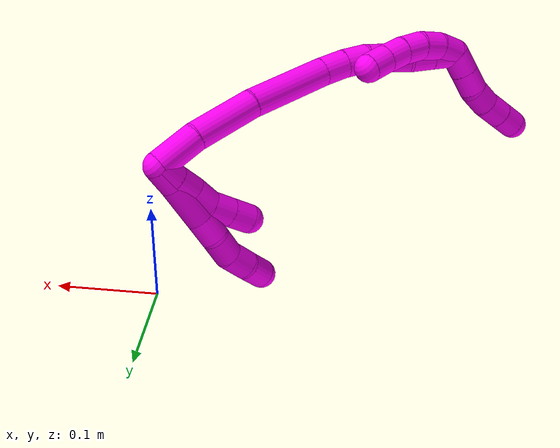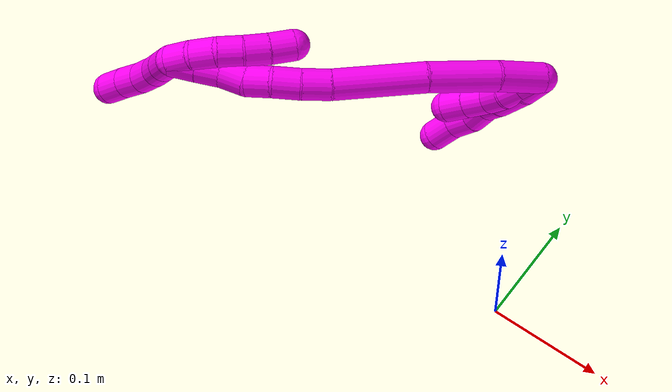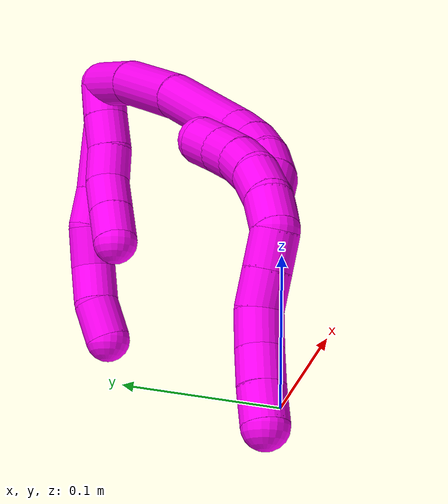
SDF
<sdf version="1.7">
 <world name="default">
  <model name="10">
   <static>0</static>
   <link name="10">
    <collision name="collision-cylinder-e_1_2_8">
     <pose>0.001721 0.00078 0.011273 -0.069084 0.151162 -0.005233</pose>
     <geometry><cylinder><radius>0.0125</radius><length>0.022861</length></cylinder></geometry>
     <surface>
      <friction><ode><mu>1.16</mu><mu2>1.16</mu2><slip1>0</slip1><slip2>0</slip2></ode></friction>
      <contact><ode><kp>1e+06</kp><kd>1</kd><max_vel>0</max_vel><min_depth>0.001</min_depth></ode></contact>
     </surface>
    </collision>
    <visual name="visual-cylinder-e_1_2_8">
     <pose>0.001721 0.00078 0.011273 -0.069084 0.151162 -0.005233</pose>
     <geometry><cylinder><radius>0.0125</radius><length>0.022861</length></cylinder></geometry>
     <material><ambient>1 0 0.964706 1</ambient></material>
    </visual>
    <collision name="collision-cylinder-e_2_8_9">
     <pose>0.005825 -0.000596 0.041715 0.112034 0.122905 0.006901</pose>
     <geometry><cylinder><radius>0.0125</radius><length>0.038872</length></cylinder></geometry>
     <surface>
      <friction><ode><mu>1.16</mu><mu2>1.16</mu2><slip1>0</slip1><slip2>0</slip2></ode></friction>
      <contact><ode><kp>1e+06</kp><kd>1</kd><max_vel>0</max_vel><min_depth>0.001</min_depth></ode></contact>
     </surface>
    </collision>
    <visual name="visual-cylinder-e_2_8_9">
     <pose>0.005825 -0.000596 0.041715 0.112034 0.122905 0.006901</pose>
     <geometry><cylinder><radius>0.0125</radius><length>0.038872</length></cylinder></geometry>
     <material><ambient>1 0 0.964706 1</ambient></material>
    </visual>
    <collision name="collision-cylinder-e_3_9_10">
     <pose>0.009109 -0.004879 0.071222 0.202793 0.085168 0.008671</pose>
     <geometry><cylinder><radius>0.0125</radius><length>0.021188</length></cylinder></geometry>
     <surface>
      <friction><ode><mu>1.16</mu><mu2>1.16</mu2><slip1>0</slip1><slip2>0</slip2></ode></friction>
      <contact><ode><kp>1e+06</kp><kd>1</kd><max_vel>0</max_vel><min_depth>0.001</min_depth></ode></contact>
     </surface>
    </collision>
    <visual name="visual-cylinder-e_3_9_10">
     <pose>0.009109 -0.004879 0.071222 0.202793 0.085168 0.008671</pose>
     <geometry><cylinder><radius>0.0125</radius><length>0.021188</length></cylinder></geometry>
     <material><ambient>1 0 0.964706 1</ambient></material>
    </visual>
    <collision name="collision-cylinder-e_4_10_11">
     <pose>0.012441 -0.0064 0.092918 -0.053225 0.210584 -0.005626</pose>
     <geometry><cylinder><radius>0.0125</radius><length>0.02326</length></cylinder></geometry>
     <surface>
      <friction><ode><mu>1.16</mu><mu2>1.16</mu2><slip1>0</slip1><slip2>0</slip2></ode></friction>
      <contact><ode><kp>1e+06</kp><kd>1</kd><max_vel>0</max_vel><min_depth>0.001</min_depth></ode></contact>
     </surface>
    </collision>
    <visual name="visual-cylinder-e_4_10_11">
     <pose>0.012441 -0.0064 0.092918 -0.053225 0.210584 -0.005626</pose>
     <geometry><cylinder><radius>0.0125</radius><length>0.02326</length></cylinder></geometry>
     <material><ambient>1 0 0.964706 1</ambient></material>
    </visual>
    <collision name="collision-cylinder-e_5_11_12">
     <pose>0.013642 -0.004453 0.114888 -0.12575 -0.114505 0.007217</pose>
     <geometry><cylinder><radius>0.0125</radius><length>0.021536</length></cylinder></geometry>
     <surface>
      <friction><ode><mu>1.16</mu><mu2>1.16</mu2><slip1>0</slip1><slip2>0</slip2></ode></friction>
      <contact><ode><kp>1e+06</kp><kd>1</kd><max_vel>0</max_vel><min_depth>0.001</min_depth></ode></contact>
     </surface>
    </collision>
    <visual name="visual-cylinder-e_5_11_12">
     <pose>0.013642 -0.004453 0.114888 -0.12575 -0.114505 0.007217</pose>
     <geometry><cylinder><radius>0.0125</radius><length>0.021536</length></cylinder></geometry>
     <material><ambient>1 0 0.964706 1</ambient></material>
    </visual>
    <collision name="collision-cylinder-e_6_12_6">
     <pose>0.012497 0.000465 0.136053 -0.326752 0.007649 -0.001261</pose>
     <geometry><cylinder><radius>0.0125</radius><length>0.022284</length></cylinder></geometry>
     <surface>
      <friction><ode><mu>1.16</mu><mu2>1.16</mu2><slip1>0</slip1><slip2>0</slip2></ode></friction>
      <contact><ode><kp>1e+06</kp><kd>1</kd><max_vel>0</max_vel><min_depth>0.001</min_depth></ode></contact>
     </surface>
    </collision>
    <visual name="visual-cylinder-e_6_12_6">
     <pose>0.012497 0.000465 0.136053 -0.326752 0.007649 -0.001261</pose>
     <geometry><cylinder><radius>0.0125</radius><length>0.022284</length></cylinder></geometry>
     <material><ambient>1 0 0.964706 1</ambient></material>
    </visual>
    <collision name="collision-cylinder-e_1_2_13">
     <pose>-0.000278 0.001058 0.00994 -0.106013 -0.027789 0.001474</pose>
     <geometry><cylinder><radius>0.0125</radius><length>0.02</length></cylinder></geometry>
     <surface>
      <friction><ode><mu>1.16</mu><mu2>1.16</mu2><slip1>0</slip1><slip2>0</slip2></ode></friction>
      <contact><ode><kp>1e+06</kp><kd>1</kd><max_vel>0</max_vel><min_depth>0.001</min_depth></ode></contact>
     </surface>
    </collision>
    <visual name="visual-cylinder-e_1_2_13">
     <pose>-0.000278 0.001058 0.00994 -0.106013 -0.027789 0.001474</pose>
     <geometry><cylinder><radius>0.0125</radius><length>0.02</length></cylinder></geometry>
     <material><ambient>1 0 0.964706 1</ambient></material>
    </visual>
    <collision name="collision-cylinder-e_2_13_14">
     <pose>-0.001099 0.003622 0.029751 -0.151465 -0.054321 0.004123</pose>
     <geometry><cylinder><radius>0.0125</radius><length>0.02</length></cylinder></geometry>
     <surface>
      <friction><ode><mu>1.16</mu><mu2>1.16</mu2><slip1>0</slip1><slip2>0</slip2></ode></friction>
      <contact><ode><kp>1e+06</kp><kd>1</kd><max_vel>0</max_vel><min_depth>0.001</min_depth></ode></contact>
     </surface>
    </collision>
    <visual name="visual-cylinder-e_2_13_14">
     <pose>-0.001099 0.003622 0.029751 -0.151465 -0.054321 0.004123</pose>
     <geometry><cylinder><radius>0.0125</radius><length>0.02</length></cylinder></geometry>
     <material><ambient>1 0 0.964706 1</ambient></material>
    </visual>
    <collision name="collision-cylinder-e_3_14_15">
     <pose>-0.002195 0.004845 0.049603 0.028428 -0.055363 -0.000787</pose>
     <geometry><cylinder><radius>0.0125</radius><length>0.02</length></cylinder></geometry>
     <surface>
      <friction><ode><mu>1.16</mu><mu2>1.16</mu2><slip1>0</slip1><slip2>0</slip2></ode></friction>
      <contact><ode><kp>1e+06</kp><kd>1</kd><max_vel>0</max_vel><min_depth>0.001</min_depth></ode></contact>
     </surface>
    </collision>
    <visual name="visual-cylinder-e_3_14_15">
     <pose>-0.002195 0.004845 0.049603 0.028428 -0.055363 -0.000787</pose>
     <geometry><cylinder><radius>0.0125</radius><length>0.02</length></cylinder></geometry>
     <material><ambient>1 0 0.964706 1</ambient></material>
    </visual>
    <collision name="collision-cylinder-e_4_15_16">
     <pose>-0.005666 0.006453 0.068959 -0.199089 -0.296044 0.029783</pose>
     <geometry><cylinder><radius>0.0125</radius><length>0.02</length></cylinder></geometry>
     <surface>
      <friction><ode><mu>1.16</mu><mu2>1.16</mu2><slip1>0</slip1><slip2>0</slip2></ode></friction>
      <contact><ode><kp>1e+06</kp><kd>1</kd><max_vel>0</max_vel><min_depth>0.001</min_depth></ode></contact>
     </surface>
    </collision>
    <visual name="visual-cylinder-e_4_15_16">
     <pose>-0.005666 0.006453 0.068959 -0.199089 -0.296044 0.029783</pose>
     <geometry><cylinder><radius>0.0125</radius><length>0.02</length></cylinder></geometry>
     <material><ambient>1 0 0.964706 1</ambient></material>
    </visual>
    <collision name="collision-cylinder-e_5_16_5">
     <pose>-0.011491 0.010264 0.087709 -0.20196 -0.295031 0.03011</pose>
     <geometry><cylinder><radius>0.0125</radius><length>0.02</length></cylinder></geometry>
     <surface>
      <friction><ode><mu>1.16</mu><mu2>1.16</mu2><slip1>0</slip1><slip2>0</slip2></ode></friction>
      <contact><ode><kp>1e+06</kp><kd>1</kd><max_vel>0</max_vel><min_depth>0.001</min_depth></ode></contact>
     </surface>
    </collision>
    <visual name="visual-cylinder-e_5_16_5">
     <pose>-0.011491 0.010264 0.087709 -0.20196 -0.295031 0.03011</pose>
     <geometry><cylinder><radius>0.0125</radius><length>0.02</length></cylinder></geometry>
     <material><ambient>1 0 0.964706 1</ambient></material>
    </visual>
    <collision name="collision-cylinder-e_1_2_17">
     <pose>-0.01522 0.011503 0.00479 -1.17623 -0.884792 0.611932</pose>
     <geometry><cylinder><radius>0.0125</radius><length>0.03934</length></cylinder></geometry>
     <surface>
      <friction><ode><mu>1.16</mu><mu2>1.16</mu2><slip1>0</slip1><slip2>0</slip2></ode></friction>
      <contact><ode><kp>1e+06</kp><kd>1</kd><max_vel>0</max_vel><min_depth>0.001</min_depth></ode></contact>
     </surface>
    </collision>
    <visual name="visual-cylinder-e_1_2_17">
     <pose>-0.01522 0.011503 0.00479 -1.17623 -0.884792 0.611932</pose>
     <geometry><cylinder><radius>0.0125</radius><length>0.03934</length></cylinder></geometry>
     <material><ambient>1 0 0.964706 1</ambient></material>
    </visual>
    <collision name="collision-cylinder-e_2_17_18">
     <pose>-0.051346 0.039537 0.020714 -0.97807 -0.809227 0.448125</pose>
     <geometry><cylinder><radius>0.0125</radius><length>0.057769</length></cylinder></geometry>
     <surface>
      <friction><ode><mu>1.16</mu><mu2>1.16</mu2><slip1>0</slip1><slip2>0</slip2></ode></friction>
      <contact><ode><kp>1e+06</kp><kd>1</kd><max_vel>0</max_vel><min_depth>0.001</min_depth></ode></contact>
     </surface>
    </collision>
    <visual name="visual-cylinder-e_2_17_18">
     <pose>-0.051346 0.039537 0.020714 -0.97807 -0.809227 0.448125</pose>
     <geometry><cylinder><radius>0.0125</radius><length>0.057769</length></cylinder></geometry>
     <material><ambient>1 0 0.964706 1</ambient></material>
    </visual>
    <collision name="collision-cylinder-e_3_18_19">
     <pose>-0.097158 0.077253 0.049991 -0.862582 -0.728937 0.34759</pose>
     <geometry><cylinder><radius>0.0125</radius><length>0.074786</length></cylinder></geometry>
     <surface>
      <friction><ode><mu>1.16</mu><mu2>1.16</mu2><slip1>0</slip1><slip2>0</slip2></ode></friction>
      <contact><ode><kp>1e+06</kp><kd>1</kd><max_vel>0</max_vel><min_depth>0.001</min_depth></ode></contact>
     </surface>
    </collision>
    <visual name="visual-cylinder-e_3_18_19">
     <pose>-0.097158 0.077253 0.049991 -0.862582 -0.728937 0.34759</pose>
     <geometry><cylinder><radius>0.0125</radius><length>0.074786</length></cylinder></geometry>
     <material><ambient>1 0 0.964706 1</ambient></material>
    </visual>
    <collision name="collision-cylinder-e_4_19_20">
     <pose>-0.130455 0.103956 0.074037 -0.751797 -0.804148 0.332555</pose>
     <geometry><cylinder><radius>0.0125</radius><length>0.0233</length></cylinder></geometry>
     <surface>
      <friction><ode><mu>1.16</mu><mu2>1.16</mu2><slip1>0</slip1><slip2>0</slip2></ode></friction>
      <contact><ode><kp>1e+06</kp><kd>1</kd><max_vel>0</max_vel><min_depth>0.001</min_depth></ode></contact>
     </surface>
    </collision>
    <visual name="visual-cylinder-e_4_19_20">
     <pose>-0.130455 0.103956 0.074037 -0.751797 -0.804148 0.332555</pose>
     <geometry><cylinder><radius>0.0125</radius><length>0.0233</length></cylinder></geometry>
     <material><ambient>1 0 0.964706 1</ambient></material>
    </visual>
    <collision name="collision-cylinder-e_5_20_21">
     <pose>-0.146858 0.113545 0.086285 -0.570261 -0.815899 0.252025</pose>
     <geometry><cylinder><radius>0.0125</radius><length>0.022</length></cylinder></geometry>
     <surface>
      <friction><ode><mu>1.16</mu><mu2>1.16</mu2><slip1>0</slip1><slip2>0</slip2></ode></friction>
      <contact><ode><kp>1e+06</kp><kd>1</kd><max_vel>0</max_vel><min_depth>0.001</min_depth></ode></contact>
     </surface>
    </collision>
    <visual name="visual-cylinder-e_5_20_21">
     <pose>-0.146858 0.113545 0.086285 -0.570261 -0.815899 0.252025</pose>
     <geometry><cylinder><radius>0.0125</radius><length>0.022</length></cylinder></geometry>
     <material><ambient>1 0 0.964706 1</ambient></material>
    </visual>
    <collision name="collision-cylinder-e_6_21_22">
     <pose>-0.161245 0.120392 0.099979 -0.361436 -0.681663 0.129425</pose>
     <geometry><cylinder><radius>0.0125</radius><length>0.020237</length></cylinder></geometry>
     <surface>
      <friction><ode><mu>1.16</mu><mu2>1.16</mu2><slip1>0</slip1><slip2>0</slip2></ode></friction>
      <contact><ode><kp>1e+06</kp><kd>1</kd><max_vel>0</max_vel><min_depth>0.001</min_depth></ode></contact>
     </surface>
    </collision>
    <visual name="visual-cylinder-e_6_21_22">
     <pose>-0.161245 0.120392 0.099979 -0.361436 -0.681663 0.129425</pose>
     <geometry><cylinder><radius>0.0125</radius><length>0.020237</length></cylinder></geometry>
     <material><ambient>1 0 0.964706 1</ambient></material>
    </visual>
    <collision name="collision-cylinder-e_7_22_23">
     <pose>-0.175506 0.123323 0.11416 -0.022202 -0.856795 0.010139</pose>
     <geometry><cylinder><radius>0.0125</radius><length>0.020868</length></cylinder></geometry>
     <surface>
      <friction><ode><mu>1.16</mu><mu2>1.16</mu2><slip1>0</slip1><slip2>0</slip2></ode></friction>
      <contact><ode><kp>1e+06</kp><kd>1</kd><max_vel>0</max_vel><min_depth>0.001</min_depth></ode></contact>
     </surface>
    </collision>
    <visual name="visual-cylinder-e_7_22_23">
     <pose>-0.175506 0.123323 0.11416 -0.022202 -0.856795 0.010139</pose>
     <geometry><cylinder><radius>0.0125</radius><length>0.020868</length></cylinder></geometry>
     <material><ambient>1 0 0.964706 1</ambient></material>
    </visual>
    <collision name="collision-cylinder-e_8_23_24">
     <pose>-0.190982 0.125518 0.127293 -0.313571 -0.853236 0.143461</pose>
     <geometry><cylinder><radius>0.0125</radius><length>0.020149</length></cylinder></geometry>
     <surface>
      <friction><ode><mu>1.16</mu><mu2>1.16</mu2><slip1>0</slip1><slip2>0</slip2></ode></friction>
      <contact><ode><kp>1e+06</kp><kd>1</kd><max_vel>0</max_vel><min_depth>0.001</min_depth></ode></contact>
     </surface>
    </collision>
    <visual name="visual-cylinder-e_8_23_24">
     <pose>-0.190982 0.125518 0.127293 -0.313571 -0.853236 0.143461</pose>
     <geometry><cylinder><radius>0.0125</radius><length>0.020149</length></cylinder></geometry>
     <material><ambient>1 0 0.964706 1</ambient></material>
    </visual>
    <collision name="collision-cylinder-e_9_24_1">
     <pose>-0.206734 0.129537 0.140347 -0.284617 -0.859335 0.131116</pose>
     <geometry><cylinder><radius>0.0125</radius><length>0.02155</length></cylinder></geometry>
     <surface>
      <friction><ode><mu>1.16</mu><mu2>1.16</mu2><slip1>0</slip1><slip2>0</slip2></ode></friction>
      <contact><ode><kp>1e+06</kp><kd>1</kd><max_vel>0</max_vel><min_depth>0.001</min_depth></ode></contact>
     </surface>
    </collision>
    <visual name="visual-cylinder-e_9_24_1">
     <pose>-0.206734 0.129537 0.140347 -0.284617 -0.859335 0.131116</pose>
     <geometry><cylinder><radius>0.0125</radius><length>0.02155</length></cylinder></geometry>
     <material><ambient>1 0 0.964706 1</ambient></material>
    </visual>
    <collision name="collision-cylinder-e_1_1_25">
     <pose>-0.211609 0.129063 0.137978 2.87929 0.334857 1.81615</pose>
     <geometry><cylinder><radius>0.0125</radius><length>0.02</length></cylinder></geometry>
     <surface>
      <friction><ode><mu>1.16</mu><mu2>1.16</mu2><slip1>0</slip1><slip2>0</slip2></ode></friction>
      <contact><ode><kp>1e+06</kp><kd>1</kd><max_vel>0</max_vel><min_depth>0.001</min_depth></ode></contact>
     </surface>
    </collision>
    <visual name="visual-cylinder-e_1_1_25">
     <pose>-0.211609 0.129063 0.137978 2.87929 0.334857 1.81615</pose>
     <geometry><cylinder><radius>0.0125</radius><length>0.02</length></cylinder></geometry>
     <material><ambient>1 0 0.964706 1</ambient></material>
    </visual>
    <collision name="collision-cylinder-e_2_25_26">
     <pose>-0.20325 0.122758 0.121149 2.67767 0.532003 1.71306</pose>
     <geometry><cylinder><radius>0.0125</radius><length>0.02</length></cylinder></geometry>
     <surface>
      <friction><ode><mu>1.16</mu><mu2>1.16</mu2><slip1>0</slip1><slip2>0</slip2></ode></friction>
      <contact><ode><kp>1e+06</kp><kd>1</kd><max_vel>0</max_vel><min_depth>0.001</min_depth></ode></contact>
     </surface>
    </collision>
    <visual name="visual-cylinder-e_2_25_26">
     <pose>-0.20325 0.122758 0.121149 2.67767 0.532003 1.71306</pose>
     <geometry><cylinder><radius>0.0125</radius><length>0.02</length></cylinder></geometry>
     <material><ambient>1 0 0.964706 1</ambient></material>
    </visual>
    <collision name="collision-cylinder-e_3_26_27">
     <pose>-0.191599 0.114073 0.107662 2.44565 0.717897 1.60459</pose>
     <geometry><cylinder><radius>0.0125</radius><length>0.02</length></cylinder></geometry>
     <surface>
      <friction><ode><mu>1.16</mu><mu2>1.16</mu2><slip1>0</slip1><slip2>0</slip2></ode></friction>
      <contact><ode><kp>1e+06</kp><kd>1</kd><max_vel>0</max_vel><min_depth>0.001</min_depth></ode></contact>
     </surface>
    </collision>
    <visual name="visual-cylinder-e_3_26_27">
     <pose>-0.191599 0.114073 0.107662 2.44565 0.717897 1.60459</pose>
     <geometry><cylinder><radius>0.0125</radius><length>0.02</length></cylinder></geometry>
     <material><ambient>1 0 0.964706 1</ambient></material>
    </visual>
    <collision name="collision-cylinder-e_4_27_28">
     <pose>-0.178419 0.103388 0.097178 2.24747 0.721115 1.33282</pose>
     <geometry><cylinder><radius>0.0125</radius><length>0.02</length></cylinder></geometry>
     <surface>
      <friction><ode><mu>1.16</mu><mu2>1.16</mu2><slip1>0</slip1><slip2>0</slip2></ode></friction>
      <contact><ode><kp>1e+06</kp><kd>1</kd><max_vel>0</max_vel><min_depth>0.001</min_depth></ode></contact>
     </surface>
    </collision>
    <visual name="visual-cylinder-e_4_27_28">
     <pose>-0.178419 0.103388 0.097178 2.24747 0.721115 1.33282</pose>
     <geometry><cylinder><radius>0.0125</radius><length>0.02</length></cylinder></geometry>
     <material><ambient>1 0 0.964706 1</ambient></material>
    </visual>
    <collision name="collision-cylinder-e_5_28_4">
     <pose>-0.165643 0.091112 0.087928 2.18705 0.665317 1.17797</pose>
     <geometry><cylinder><radius>0.0125</radius><length>0.02</length></cylinder></geometry>
     <surface>
      <friction><ode><mu>1.16</mu><mu2>1.16</mu2><slip1>0</slip1><slip2>0</slip2></ode></friction>
      <contact><ode><kp>1e+06</kp><kd>1</kd><max_vel>0</max_vel><min_depth>0.001</min_depth></ode></contact>
     </surface>
    </collision>
    <visual name="visual-cylinder-e_5_28_4">
     <pose>-0.165643 0.091112 0.087928 2.18705 0.665317 1.17797</pose>
     <geometry><cylinder><radius>0.0125</radius><length>0.02</length></cylinder></geometry>
     <material><ambient>1 0 0.964706 1</ambient></material>
    </visual>
    <collision name="collision-cylinder-e_1_1_29">
     <pose>-0.213324 0.129355 0.156737 0.220222 0.157713 0.017472</pose>
     <geometry><cylinder><radius>0.0125</radius><length>0.02</length></cylinder></geometry>
     <surface>
      <friction><ode><mu>1.16</mu><mu2>1.16</mu2><slip1>0</slip1><slip2>0</slip2></ode></friction>
      <contact><ode><kp>1e+06</kp><kd>1</kd><max_vel>0</max_vel><min_depth>0.001</min_depth></ode></contact>
     </surface>
    </collision>
    <visual name="visual-cylinder-e_1_1_29">
     <pose>-0.213324 0.129355 0.156737 0.220222 0.157713 0.017472</pose>
     <geometry><cylinder><radius>0.0125</radius><length>0.02</length></cylinder></geometry>
     <material><ambient>1 0 0.964706 1</ambient></material>
    </visual>
    <collision name="collision-cylinder-e_2_29_30">
     <pose>-0.210181 0.125039 0.176011 0.220292 0.157876 0.017496</pose>
     <geometry><cylinder><radius>0.0125</radius><length>0.02</length></cylinder></geometry>
     <surface>
      <friction><ode><mu>1.16</mu><mu2>1.16</mu2><slip1>0</slip1><slip2>0</slip2></ode></friction>
      <contact><ode><kp>1e+06</kp><kd>1</kd><max_vel>0</max_vel><min_depth>0.001</min_depth></ode></contact>
     </surface>
    </collision>
    <visual name="visual-cylinder-e_2_29_30">
     <pose>-0.210181 0.125039 0.176011 0.220292 0.157876 0.017496</pose>
     <geometry><cylinder><radius>0.0125</radius><length>0.02</length></cylinder></geometry>
     <material><ambient>1 0 0.964706 1</ambient></material>
    </visual>
    <collision name="collision-cylinder-e_3_30_31">
     <pose>-0.208815 0.123225 0.19564 -0.03436 -0.020588 0.000354</pose>
     <geometry><cylinder><radius>0.0125</radius><length>0.02</length></cylinder></geometry>
     <surface>
      <friction><ode><mu>1.16</mu><mu2>1.16</mu2><slip1>0</slip1><slip2>0</slip2></ode></friction>
      <contact><ode><kp>1e+06</kp><kd>1</kd><max_vel>0</max_vel><min_depth>0.001</min_depth></ode></contact>
     </surface>
    </collision>
    <visual name="visual-cylinder-e_3_30_31">
     <pose>-0.208815 0.123225 0.19564 -0.03436 -0.020588 0.000354</pose>
     <geometry><cylinder><radius>0.0125</radius><length>0.02</length></cylinder></geometry>
     <material><ambient>1 0 0.964706 1</ambient></material>
    </visual>
    <collision name="collision-cylinder-e_4_31_32">
     <pose>-0.210694 0.124391 0.215457 -0.083566 -0.168065 0.007043</pose>
     <geometry><cylinder><radius>0.0125</radius><length>0.02</length></cylinder></geometry>
     <surface>
      <friction><ode><mu>1.16</mu><mu2>1.16</mu2><slip1>0</slip1><slip2>0</slip2></ode></friction>
      <contact><ode><kp>1e+06</kp><kd>1</kd><max_vel>0</max_vel><min_depth>0.001</min_depth></ode></contact>
     </surface>
    </collision>
    <visual name="visual-cylinder-e_4_31_32">
     <pose>-0.210694 0.124391 0.215457 -0.083566 -0.168065 0.007043</pose>
     <geometry><cylinder><radius>0.0125</radius><length>0.02</length></cylinder></geometry>
     <material><ambient>1 0 0.964706 1</ambient></material>
    </visual>
    <collision name="collision-cylinder-e_5_32_3">
     <pose>-0.213892 0.126547 0.235074 -0.135286 -0.153099 0.010392</pose>
     <geometry><cylinder><radius>0.0125</radius><length>0.02</length></cylinder></geometry>
     <surface>
      <friction><ode><mu>1.16</mu><mu2>1.16</mu2><slip1>0</slip1><slip2>0</slip2></ode></friction>
      <contact><ode><kp>1e+06</kp><kd>1</kd><max_vel>0</max_vel><min_depth>0.001</min_depth></ode></contact>
     </surface>
    </collision>
    <visual name="visual-cylinder-e_5_32_3">
     <pose>-0.213892 0.126547 0.235074 -0.135286 -0.153099 0.010392</pose>
     <geometry><cylinder><radius>0.0125</radius><length>0.02</length></cylinder></geometry>
     <material><ambient>1 0 0.964706 1</ambient></material>
    </visual>
    <collision name="collision-sphere-3">
     <pose>-0.215417 0.12788 0.244867 0 -0 0</pose>
     <geometry><sphere><radius>0.0125</radius></sphere></geometry>
     <surface>
      <friction><ode><mu>1.16</mu><mu2>1.16</mu2><slip1>0</slip1><slip2>0</slip2></ode></friction>
      <contact><ode><kp>1e+06</kp><kd>1</kd><max_vel>0</max_vel><min_depth>0.001</min_depth></ode></contact>
     </surface>
    </collision>
    <visual name="visual-sphere-3">
     <pose>-0.215417 0.12788 0.244867 0 -0 0</pose>
     <geometry><sphere><radius>0.0125</radius></sphere></geometry>
     <material><ambient>1 0 0.964706 1</ambient></material>
    </visual>
    <collision name="collision-sphere-32">
     <pose>-0.212367 0.125214 0.225281 0 -0 0</pose>
     <geometry><sphere><radius>0.0125</radius></sphere></geometry>
     <surface>
      <friction><ode><mu>1.16</mu><mu2>1.16</mu2><slip1>0</slip1><slip2>0</slip2></ode></friction>
      <contact><ode><kp>1e+06</kp><kd>1</kd><max_vel>0</max_vel><min_depth>0.001</min_depth></ode></contact>
     </surface>
    </collision>
    <visual name="visual-sphere-32">
     <pose>-0.212367 0.125214 0.225281 0 -0 0</pose>
     <geometry><sphere><radius>0.0125</radius></sphere></geometry>
     <material><ambient>1 0 0.964706 1</ambient></material>
    </visual>
    <collision name="collision-sphere-31">
     <pose>-0.209021 0.123568 0.205632 0 -0 0</pose>
     <geometry><sphere><radius>0.0125</radius></sphere></geometry>
     <surface>
      <friction><ode><mu>1.16</mu><mu2>1.16</mu2><slip1>0</slip1><slip2>0</slip2></ode></friction>
      <contact><ode><kp>1e+06</kp><kd>1</kd><max_vel>0</max_vel><min_depth>0.001</min_depth></ode></contact>
     </surface>
    </collision>
    <visual name="visual-sphere-31">
     <pose>-0.209021 0.123568 0.205632 0 -0 0</pose>
     <geometry><sphere><radius>0.0125</radius></sphere></geometry>
     <material><ambient>1 0 0.964706 1</ambient></material>
    </visual>
    <collision name="collision-sphere-30">
     <pose>-0.208609 0.122881 0.185648 0 -0 0</pose>
     <geometry><sphere><radius>0.0125</radius></sphere></geometry>
     <surface>
      <friction><ode><mu>1.16</mu><mu2>1.16</mu2><slip1>0</slip1><slip2>0</slip2></ode></friction>
      <contact><ode><kp>1e+06</kp><kd>1</kd><max_vel>0</max_vel><min_depth>0.001</min_depth></ode></contact>
     </surface>
    </collision>
    <visual name="visual-sphere-30">
     <pose>-0.208609 0.122881 0.185648 0 -0 0</pose>
     <geometry><sphere><radius>0.0125</radius></sphere></geometry>
     <material><ambient>1 0 0.964706 1</ambient></material>
    </visual>
    <collision name="collision-sphere-29">
     <pose>-0.211754 0.127197 0.166374 0 -0 0</pose>
     <geometry><sphere><radius>0.0125</radius></sphere></geometry>
     <surface>
      <friction><ode><mu>1.16</mu><mu2>1.16</mu2><slip1>0</slip1><slip2>0</slip2></ode></friction>
      <contact><ode><kp>1e+06</kp><kd>1</kd><max_vel>0</max_vel><min_depth>0.001</min_depth></ode></contact>
     </surface>
    </collision>
    <visual name="visual-sphere-29">
     <pose>-0.211754 0.127197 0.166374 0 -0 0</pose>
     <geometry><sphere><radius>0.0125</radius></sphere></geometry>
     <material><ambient>1 0 0.964706 1</ambient></material>
    </visual>
    <collision name="collision-sphere-4">
     <pose>-0.15947 0.084692 0.083381 0 -0 0</pose>
     <geometry><sphere><radius>0.0125</radius></sphere></geometry>
     <surface>
      <friction><ode><mu>1.16</mu><mu2>1.16</mu2><slip1>0</slip1><slip2>0</slip2></ode></friction>
      <contact><ode><kp>1e+06</kp><kd>1</kd><max_vel>0</max_vel><min_depth>0.001</min_depth></ode></contact>
     </surface>
    </collision>
    <visual name="visual-sphere-4">
     <pose>-0.15947 0.084692 0.083381 0 -0 0</pose>
     <geometry><sphere><radius>0.0125</radius></sphere></geometry>
     <material><ambient>1 0 0.964706 1</ambient></material>
    </visual>
    <collision name="collision-sphere-28">
     <pose>-0.171817 0.097532 0.092475 0 -0 0</pose>
     <geometry><sphere><radius>0.0125</radius></sphere></geometry>
     <surface>
      <friction><ode><mu>1.16</mu><mu2>1.16</mu2><slip1>0</slip1><slip2>0</slip2></ode></friction>
      <contact><ode><kp>1e+06</kp><kd>1</kd><max_vel>0</max_vel><min_depth>0.001</min_depth></ode></contact>
     </surface>
    </collision>
    <visual name="visual-sphere-28">
     <pose>-0.171817 0.097532 0.092475 0 -0 0</pose>
     <geometry><sphere><radius>0.0125</radius></sphere></geometry>
     <material><ambient>1 0 0.964706 1</ambient></material>
    </visual>
    <collision name="collision-sphere-27">
     <pose>-0.185021 0.109244 0.101881 0 -0 0</pose>
     <geometry><sphere><radius>0.0125</radius></sphere></geometry>
     <surface>
      <friction><ode><mu>1.16</mu><mu2>1.16</mu2><slip1>0</slip1><slip2>0</slip2></ode></friction>
      <contact><ode><kp>1e+06</kp><kd>1</kd><max_vel>0</max_vel><min_depth>0.001</min_depth></ode></contact>
     </surface>
    </collision>
    <visual name="visual-sphere-27">
     <pose>-0.185021 0.109244 0.101881 0 -0 0</pose>
     <geometry><sphere><radius>0.0125</radius></sphere></geometry>
     <material><ambient>1 0 0.964706 1</ambient></material>
    </visual>
    <collision name="collision-sphere-26">
     <pose>-0.198177 0.118902 0.113442 0 -0 0</pose>
     <geometry><sphere><radius>0.0125</radius></sphere></geometry>
     <surface>
      <friction><ode><mu>1.16</mu><mu2>1.16</mu2><slip1>0</slip1><slip2>0</slip2></ode></friction>
      <contact><ode><kp>1e+06</kp><kd>1</kd><max_vel>0</max_vel><min_depth>0.001</min_depth></ode></contact>
     </surface>
    </collision>
    <visual name="visual-sphere-26">
     <pose>-0.198177 0.118902 0.113442 0 -0 0</pose>
     <geometry><sphere><radius>0.0125</radius></sphere></geometry>
     <material><ambient>1 0 0.964706 1</ambient></material>
    </visual>
    <collision name="collision-sphere-25">
     <pose>-0.208322 0.126614 0.128856 0 -0 0</pose>
     <geometry><sphere><radius>0.0125</radius></sphere></geometry>
     <surface>
      <friction><ode><mu>1.16</mu><mu2>1.16</mu2><slip1>0</slip1><slip2>0</slip2></ode></friction>
      <contact><ode><kp>1e+06</kp><kd>1</kd><max_vel>0</max_vel><min_depth>0.001</min_depth></ode></contact>
     </surface>
    </collision>
    <visual name="visual-sphere-25">
     <pose>-0.208322 0.126614 0.128856 0 -0 0</pose>
     <geometry><sphere><radius>0.0125</radius></sphere></geometry>
     <material><ambient>1 0 0.964706 1</ambient></material>
    </visual>
    <collision name="collision-sphere-1">
     <pose>-0.214895 0.131512 0.147099 0 -0 0</pose>
     <geometry><sphere><radius>0.0125</radius></sphere></geometry>
     <surface>
      <friction><ode><mu>1.16</mu><mu2>1.16</mu2><slip1>0</slip1><slip2>0</slip2></ode></friction>
      <contact><ode><kp>1e+06</kp><kd>1</kd><max_vel>0</max_vel><min_depth>0.001</min_depth></ode></contact>
     </surface>
    </collision>
    <visual name="visual-sphere-1">
     <pose>-0.214895 0.131512 0.147099 0 -0 0</pose>
     <geometry><sphere><radius>0.0125</radius></sphere></geometry>
     <material><ambient>1 0 0.964706 1</ambient></material>
    </visual>
    <collision name="collision-sphere-24">
     <pose>-0.198573 0.127561 0.133594 0 -0 0</pose>
     <geometry><sphere><radius>0.0125</radius></sphere></geometry>
     <surface>
      <friction><ode><mu>1.16</mu><mu2>1.16</mu2><slip1>0</slip1><slip2>0</slip2></ode></friction>
      <contact><ode><kp>1e+06</kp><kd>1</kd><max_vel>0</max_vel><min_depth>0.001</min_depth></ode></contact>
     </surface>
    </collision>
    <visual name="visual-sphere-24">
     <pose>-0.198573 0.127561 0.133594 0 -0 0</pose>
     <geometry><sphere><radius>0.0125</radius></sphere></geometry>
     <material><ambient>1 0 0.964706 1</ambient></material>
    </visual>
    <collision name="collision-sphere-23">
     <pose>-0.183392 0.123474 0.120991 0 -0 0</pose>
     <geometry><sphere><radius>0.0125</radius></sphere></geometry>
     <surface>
      <friction><ode><mu>1.16</mu><mu2>1.16</mu2><slip1>0</slip1><slip2>0</slip2></ode></friction>
      <contact><ode><kp>1e+06</kp><kd>1</kd><max_vel>0</max_vel><min_depth>0.001</min_depth></ode></contact>
     </surface>
    </collision>
    <visual name="visual-sphere-23">
     <pose>-0.183392 0.123474 0.120991 0 -0 0</pose>
     <geometry><sphere><radius>0.0125</radius></sphere></geometry>
     <material><ambient>1 0 0.964706 1</ambient></material>
    </visual>
    <collision name="collision-sphere-22">
     <pose>-0.167621 0.123171 0.107329 0 -0 0</pose>
     <geometry><sphere><radius>0.0125</radius></sphere></geometry>
     <surface>
      <friction><ode><mu>1.16</mu><mu2>1.16</mu2><slip1>0</slip1><slip2>0</slip2></ode></friction>
      <contact><ode><kp>1e+06</kp><kd>1</kd><max_vel>0</max_vel><min_depth>0.001</min_depth></ode></contact>
     </surface>
    </collision>
    <visual name="visual-sphere-22">
     <pose>-0.167621 0.123171 0.107329 0 -0 0</pose>
     <geometry><sphere><radius>0.0125</radius></sphere></geometry>
     <material><ambient>1 0 0.964706 1</ambient></material>
    </visual>
    <collision name="collision-sphere-21">
     <pose>-0.154869 0.117614 0.092629 0 -0 0</pose>
     <geometry><sphere><radius>0.0125</radius></sphere></geometry>
     <surface>
      <friction><ode><mu>1.16</mu><mu2>1.16</mu2><slip1>0</slip1><slip2>0</slip2></ode></friction>
      <contact><ode><kp>1e+06</kp><kd>1</kd><max_vel>0</max_vel><min_depth>0.001</min_depth></ode></contact>
     </surface>
    </collision>
    <visual name="visual-sphere-21">
     <pose>-0.154869 0.117614 0.092629 0 -0 0</pose>
     <geometry><sphere><radius>0.0125</radius></sphere></geometry>
     <material><ambient>1 0 0.964706 1</ambient></material>
    </visual>
    <collision name="collision-sphere-12">
     <pose>0.012412 -0.003112 0.125501 0 -0 0</pose>
     <geometry><sphere><radius>0.0125</radius></sphere></geometry>
     <surface>
      <friction><ode><mu>1.16</mu><mu2>1.16</mu2><slip1>0</slip1><slip2>0</slip2></ode></friction>
      <contact><ode><kp>1e+06</kp><kd>1</kd><max_vel>0</max_vel><min_depth>0.001</min_depth></ode></contact>
     </surface>
    </collision>
    <visual name="visual-sphere-12">
     <pose>0.012412 -0.003112 0.125501 0 -0 0</pose>
     <geometry><sphere><radius>0.0125</radius></sphere></geometry>
     <material><ambient>1 0 0.964706 1</ambient></material>
    </visual>
    <collision name="collision-sphere-11">
     <pose>0.014872 -0.005795 0.104275 0 -0 0</pose>
     <geometry><sphere><radius>0.0125</radius></sphere></geometry>
     <surface>
      <friction><ode><mu>1.16</mu><mu2>1.16</mu2><slip1>0</slip1><slip2>0</slip2></ode></friction>
      <contact><ode><kp>1e+06</kp><kd>1</kd><max_vel>0</max_vel><min_depth>0.001</min_depth></ode></contact>
     </surface>
    </collision>
    <visual name="visual-sphere-11">
     <pose>0.014872 -0.005795 0.104275 0 -0 0</pose>
     <geometry><sphere><radius>0.0125</radius></sphere></geometry>
     <material><ambient>1 0 0.964706 1</ambient></material>
    </visual>
    <collision name="collision-sphere-10">
     <pose>0.01001 -0.007005 0.081562 0 -0 0</pose>
     <geometry><sphere><radius>0.0125</radius></sphere></geometry>
     <surface>
      <friction><ode><mu>1.16</mu><mu2>1.16</mu2><slip1>0</slip1><slip2>0</slip2></ode></friction>
      <contact><ode><kp>1e+06</kp><kd>1</kd><max_vel>0</max_vel><min_depth>0.001</min_depth></ode></contact>
     </surface>
    </collision>
    <visual name="visual-sphere-10">
     <pose>0.01001 -0.007005 0.081562 0 -0 0</pose>
     <geometry><sphere><radius>0.0125</radius></sphere></geometry>
     <material><ambient>1 0 0.964706 1</ambient></material>
    </visual>
    <collision name="collision-sphere-9">
     <pose>0.008208 -0.002753 0.060883 0 -0 0</pose>
     <geometry><sphere><radius>0.0125</radius></sphere></geometry>
     <surface>
      <friction><ode><mu>1.16</mu><mu2>1.16</mu2><slip1>0</slip1><slip2>0</slip2></ode></friction>
      <contact><ode><kp>1e+06</kp><kd>1</kd><max_vel>0</max_vel><min_depth>0.001</min_depth></ode></contact>
     </surface>
    </collision>
    <visual name="visual-sphere-9">
     <pose>0.008208 -0.002753 0.060883 0 -0 0</pose>
     <geometry><sphere><radius>0.0125</radius></sphere></geometry>
     <material><ambient>1 0 0.964706 1</ambient></material>
    </visual>
    <collision name="collision-sphere-2">
     <geometry><sphere><radius>0.0125</radius></sphere></geometry>
     <surface>
      <friction><ode><mu>1.16</mu><mu2>1.16</mu2><slip1>0</slip1><slip2>0</slip2></ode></friction>
      <contact><ode><kp>1e+06</kp><kd>1</kd><max_vel>0</max_vel><min_depth>0.001</min_depth></ode></contact>
     </surface>
    </collision>
    <visual name="visual-sphere-2">
     <geometry><sphere><radius>0.0125</radius></sphere></geometry>
     <material><ambient>1 0 0.964706 1</ambient></material>
    </visual>
    <collision name="collision-sphere-19">
     <pose>-0.122065 0.098437 0.068133 0 -0 0</pose>
     <geometry><sphere><radius>0.0125</radius></sphere></geometry>
     <surface>
      <friction><ode><mu>1.16</mu><mu2>1.16</mu2><slip1>0</slip1><slip2>0</slip2></ode></friction>
      <contact><ode><kp>1e+06</kp><kd>1</kd><max_vel>0</max_vel><min_depth>0.001</min_depth></ode></contact>
     </surface>
    </collision>
    <visual name="visual-sphere-19">
     <pose>-0.122065 0.098437 0.068133 0 -0 0</pose>
     <geometry><sphere><radius>0.0125</radius></sphere></geometry>
     <material><ambient>1 0 0.964706 1</ambient></material>
    </visual>
    <collision name="collision-sphere-8">
     <pose>0.003443 0.00156 0.022546 0 -0 0</pose>
     <geometry><sphere><radius>0.0125</radius></sphere></geometry>
     <surface>
      <friction><ode><mu>1.16</mu><mu2>1.16</mu2><slip1>0</slip1><slip2>0</slip2></ode></friction>
      <contact><ode><kp>1e+06</kp><kd>1</kd><max_vel>0</max_vel><min_depth>0.001</min_depth></ode></contact>
     </surface>
    </collision>
    <visual name="visual-sphere-8">
     <pose>0.003443 0.00156 0.022546 0 -0 0</pose>
     <geometry><sphere><radius>0.0125</radius></sphere></geometry>
     <material><ambient>1 0 0.964706 1</ambient></material>
    </visual>
    <collision name="collision-sphere-6">
     <pose>0.012582 0.004041 0.146605 0 -0 0</pose>
     <geometry><sphere><radius>0.0125</radius></sphere></geometry>
     <surface>
      <friction><ode><mu>1.16</mu><mu2>1.16</mu2><slip1>0</slip1><slip2>0</slip2></ode></friction>
      <contact><ode><kp>1e+06</kp><kd>1</kd><max_vel>0</max_vel><min_depth>0.001</min_depth></ode></contact>
     </surface>
    </collision>
    <visual name="visual-sphere-6">
     <pose>0.012582 0.004041 0.146605 0 -0 0</pose>
     <geometry><sphere><radius>0.0125</radius></sphere></geometry>
     <material><ambient>1 0 0.964706 1</ambient></material>
    </visual>
    <collision name="collision-sphere-13">
     <pose>-0.000556 0.002115 0.01988 0 -0 0</pose>
     <geometry><sphere><radius>0.0125</radius></sphere></geometry>
     <surface>
      <friction><ode><mu>1.16</mu><mu2>1.16</mu2><slip1>0</slip1><slip2>0</slip2></ode></friction>
      <contact><ode><kp>1e+06</kp><kd>1</kd><max_vel>0</max_vel><min_depth>0.001</min_depth></ode></contact>
     </surface>
    </collision>
    <visual name="visual-sphere-13">
     <pose>-0.000556 0.002115 0.01988 0 -0 0</pose>
     <geometry><sphere><radius>0.0125</radius></sphere></geometry>
     <material><ambient>1 0 0.964706 1</ambient></material>
    </visual>
    <collision name="collision-sphere-14">
     <pose>-0.001642 0.005129 0.039622 0 -0 0</pose>
     <geometry><sphere><radius>0.0125</radius></sphere></geometry>
     <surface>
      <friction><ode><mu>1.16</mu><mu2>1.16</mu2><slip1>0</slip1><slip2>0</slip2></ode></friction>
      <contact><ode><kp>1e+06</kp><kd>1</kd><max_vel>0</max_vel><min_depth>0.001</min_depth></ode></contact>
     </surface>
    </collision>
    <visual name="visual-sphere-14">
     <pose>-0.001642 0.005129 0.039622 0 -0 0</pose>
     <geometry><sphere><radius>0.0125</radius></sphere></geometry>
     <material><ambient>1 0 0.964706 1</ambient></material>
    </visual>
    <collision name="collision-sphere-15">
     <pose>-0.002748 0.004561 0.059583 0 -0 0</pose>
     <geometry><sphere><radius>0.0125</radius></sphere></geometry>
     <surface>
      <friction><ode><mu>1.16</mu><mu2>1.16</mu2><slip1>0</slip1><slip2>0</slip2></ode></friction>
      <contact><ode><kp>1e+06</kp><kd>1</kd><max_vel>0</max_vel><min_depth>0.001</min_depth></ode></contact>
     </surface>
    </collision>
    <visual name="visual-sphere-15">
     <pose>-0.002748 0.004561 0.059583 0 -0 0</pose>
     <geometry><sphere><radius>0.0125</radius></sphere></geometry>
     <material><ambient>1 0 0.964706 1</ambient></material>
    </visual>
    <collision name="collision-sphere-16">
     <pose>-0.008583 0.008345 0.078335 0 -0 0</pose>
     <geometry><sphere><radius>0.0125</radius></sphere></geometry>
     <surface>
      <friction><ode><mu>1.16</mu><mu2>1.16</mu2><slip1>0</slip1><slip2>0</slip2></ode></friction>
      <contact><ode><kp>1e+06</kp><kd>1</kd><max_vel>0</max_vel><min_depth>0.001</min_depth></ode></contact>
     </surface>
    </collision>
    <visual name="visual-sphere-16">
     <pose>-0.008583 0.008345 0.078335 0 -0 0</pose>
     <geometry><sphere><radius>0.0125</radius></sphere></geometry>
     <material><ambient>1 0 0.964706 1</ambient></material>
    </visual>
    <collision name="collision-sphere-5">
     <pose>-0.014398 0.012183 0.097082 0 -0 0</pose>
     <geometry><sphere><radius>0.0125</radius></sphere></geometry>
     <surface>
      <friction><ode><mu>1.16</mu><mu2>1.16</mu2><slip1>0</slip1><slip2>0</slip2></ode></friction>
      <contact><ode><kp>1e+06</kp><kd>1</kd><max_vel>0</max_vel><min_depth>0.001</min_depth></ode></contact>
     </surface>
    </collision>
    <visual name="visual-sphere-5">
     <pose>-0.014398 0.012183 0.097082 0 -0 0</pose>
     <geometry><sphere><radius>0.0125</radius></sphere></geometry>
     <material><ambient>1 0 0.964706 1</ambient></material>
    </visual>
    <collision name="collision-sphere-17">
     <pose>-0.030441 0.023005 0.009579 0 -0 0</pose>
     <geometry><sphere><radius>0.0125</radius></sphere></geometry>
     <surface>
      <friction><ode><mu>1.16</mu><mu2>1.16</mu2><slip1>0</slip1><slip2>0</slip2></ode></friction>
      <contact><ode><kp>1e+06</kp><kd>1</kd><max_vel>0</max_vel><min_depth>0.001</min_depth></ode></contact>
     </surface>
    </collision>
    <visual name="visual-sphere-17">
     <pose>-0.030441 0.023005 0.009579 0 -0 0</pose>
     <geometry><sphere><radius>0.0125</radius></sphere></geometry>
     <material><ambient>1 0 0.964706 1</ambient></material>
    </visual>
    <collision name="collision-sphere-18">
     <pose>-0.072251 0.056069 0.031848 0 -0 0</pose>
     <geometry><sphere><radius>0.0125</radius></sphere></geometry>
     <surface>
      <friction><ode><mu>1.16</mu><mu2>1.16</mu2><slip1>0</slip1><slip2>0</slip2></ode></friction>
      <contact><ode><kp>1e+06</kp><kd>1</kd><max_vel>0</max_vel><min_depth>0.001</min_depth></ode></contact>
     </surface>
    </collision>
    <visual name="visual-sphere-18">
     <pose>-0.072251 0.056069 0.031848 0 -0 0</pose>
     <geometry><sphere><radius>0.0125</radius></sphere></geometry>
     <material><ambient>1 0 0.964706 1</ambient></material>
    </visual>
    <collision name="collision-sphere-20">
     <pose>-0.138846 0.109476 0.07994 0 -0 0</pose>
     <geometry><sphere><radius>0.0125</radius></sphere></geometry>
     <surface>
      <friction><ode><mu>1.16</mu><mu2>1.16</mu2><slip1>0</slip1><slip2>0</slip2></ode></friction>
      <contact><ode><kp>1e+06</kp><kd>1</kd><max_vel>0</max_vel><min_depth>0.001</min_depth></ode></contact>
     </surface>
    </collision>
    <visual name="visual-sphere-20">
     <pose>-0.138846 0.109476 0.07994 0 -0 0</pose>
     <geometry><sphere><radius>0.0125</radius></sphere></geometry>
     <material><ambient>1 0 0.964706 1</ambient></material>
    </visual>
    <inertial>
     <pose>-0.095431 0.063634 0.087111 0 -0 0</pose>
     <mass>0.75</mass>
     <inertia><ixx>9e-05</ixx><ixy>0</ixy><ixz>0</ixz><iyy>0.000122</iyy><iyz>0</iyz><izz>4.4e-05</izz></inertia>
    </inertial>
   </link>
   <pose>-0.035184 0.096907 0.209033 3.02866 0.6725 0.106439</pose>
  </model>
 </world>
</sdf>
